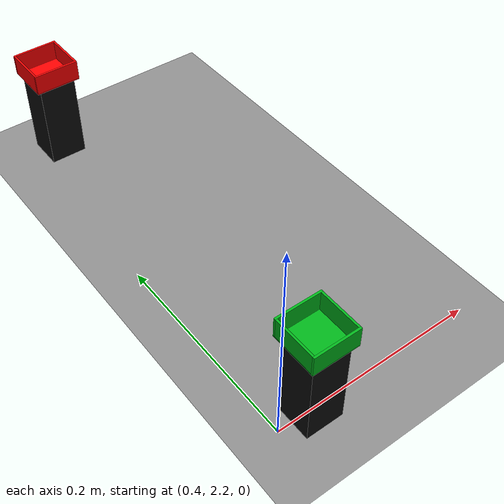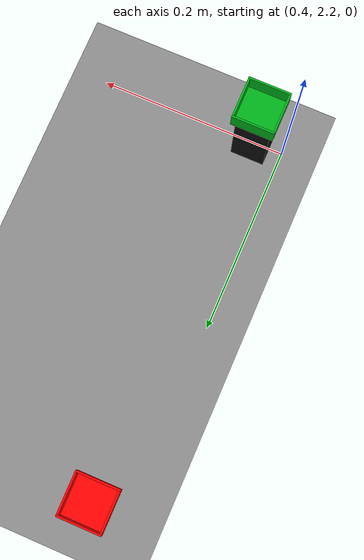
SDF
<sdf version="1.9">
 <world name="ros2_world">
  <model name="ground_plane">
   <static>true</static>
   <link name="link">
    <collision name="collision">
     <geometry><plane><normal>0 0 1</normal><size>30 30</size></plane></geometry>
    </collision>
    <visual name="visual">
     <geometry><plane><normal>0 0 1</normal><size>30 30</size></plane></geometry>
     <material><ambient>0.55 0.55 0.55 1</ambient><diffuse>0.55 0.55 0.55 1</diffuse></material>
    </visual>
   </link>
  </model>
  <model name="soporte_canasto_rojo">
   <static>true</static>
   <pose>0.432 2.6 0.04425 0 0 0</pose>
   <link name="link">
    <collision name="colision"><geometry><box><size>0.036 0.036 0.0885</size></box></geometry></collision>
    <visual name="visual">
     <geometry><box><size>0.036 0.036 0.0885</size></box></geometry>
     <material><ambient>0.05 0.05 0.05 1</ambient><diffuse>0.05 0.05 0.05 1</diffuse></material>
    </visual>
   </link>
  </model>
  <model name="canasto_rojo">
   <static>true</static>
   <pose>0.432 2.6 0.0885 0 0 0</pose>
   <link name="link">
    <collision name="c_fondo">
     <pose>0 0 0.0005 0 0 0</pose>
     <geometry><box><size>0.044 0.044 0.001</size></box></geometry>
     <surface><friction><ode><mu>1</mu><mu2>1</mu2></ode></friction></surface>
    </collision>
    <visual name="v_fondo">
     <pose>0 0 0.0005 0 0 0</pose>
     <geometry><box><size>0.044 0.044 0.001</size></box></geometry>
     <material><ambient>1 0 0 1</ambient><diffuse>1 0 0 1</diffuse></material>
    </visual>
    <collision name="c_pared_n">
     <pose>0 0.021 0.01 0 0 0</pose>
     <geometry><box><size>0.044 0.002 0.02</size></box></geometry>
     <surface><friction><ode><mu>1</mu><mu2>1</mu2></ode></friction></surface>
    </collision>
    <visual name="v_pared_n">
     <pose>0 0.021 0.01 0 0 0</pose>
     <geometry><box><size>0.044 0.002 0.02</size></box></geometry>
     <material><ambient>1 0 0 1</ambient><diffuse>1 0 0 1</diffuse></material>
    </visual>
    <collision name="c_pared_s">
     <pose>0 -0.021 0.01 0 0 0</pose>
     <geometry><box><size>0.044 0.002 0.02</size></box></geometry>
     <surface><friction><ode><mu>1</mu><mu2>1</mu2></ode></friction></surface>
    </collision>
    <visual name="v_pared_s">
     <pose>0 -0.021 0.01 0 0 0</pose>
     <geometry><box><size>0.044 0.002 0.02</size></box></geometry>
     <material><ambient>1 0 0 1</ambient><diffuse>1 0 0 1</diffuse></material>
    </visual>
    <collision name="c_pared_e">
     <pose>0.021 0 0.01 0 0 0</pose>
     <geometry><box><size>0.002 0.04 0.02</size></box></geometry>
     <surface><friction><ode><mu>1</mu><mu2>1</mu2></ode></friction></surface>
    </collision>
    <visual name="v_pared_e">
     <pose>0.021 0 0.01 0 0 0</pose>
     <geometry><box><size>0.002 0.04 0.02</size></box></geometry>
     <material><ambient>1 0 0 1</ambient><diffuse>1 0 0 1</diffuse></material>
    </visual>
    <collision name="c_pared_o">
     <pose>-0.021 0 0.01 0 0 0</pose>
     <geometry><box><size>0.002 0.04 0.02</size></box></geometry>
     <surface><friction><ode><mu>1</mu><mu2>1</mu2></ode></friction></surface>
    </collision>
    <visual name="v_pared_o">
     <pose>-0.021 0 0.01 0 0 0</pose>
     <geometry><box><size>0.002 0.04 0.02</size></box></geometry>
     <material><ambient>1 0 0 1</ambient><diffuse>1 0 0 1</diffuse></material>
    </visual>
   </link>
  </model>
  <model name="soporte_canasto_verde">
   <static>true</static>
   <pose>0.432 2.2 0.04425 0 0 0</pose>
   <link name="link">
    <collision name="colision"><geometry><box><size>0.036 0.036 0.0885</size></box></geometry></collision>
    <visual name="visual">
     <geometry><box><size>0.036 0.036 0.0885</size></box></geometry>
     <material><ambient>0.05 0.05 0.05 1</ambient><diffuse>0.05 0.05 0.05 1</diffuse></material>
    </visual>
   </link>
  </model>
  <model name="canasto_verde">
   <static>true</static>
   <pose>0.432 2.2 0.0885 0 0 0</pose>
   <link name="link">
    <collision name="c_fondo">
     <pose>0 0 0.0005 0 0 0</pose>
     <geometry><box><size>0.044 0.044 0.001</size></box></geometry>
     <surface><friction><ode><mu>1</mu><mu2>1</mu2></ode></friction></surface>
    </collision>
    <visual name="v_fondo">
     <pose>0 0 0.0005 0 0 0</pose>
     <geometry><box><size>0.044 0.044 0.001</size></box></geometry>
     <material><ambient>0 0.7 0.1 1</ambient><diffuse>0 0.7 0.1 1</diffuse></material>
    </visual>
    <collision name="c_pared_n">
     <pose>0 0.021 0.01 0 0 0</pose>
     <geometry><box><size>0.044 0.002 0.02</size></box></geometry>
     <surface><friction><ode><mu>1</mu><mu2>1</mu2></ode></friction></surface>
    </collision>
    <visual name="v_pared_n">
     <pose>0 0.021 0.01 0 0 0</pose>
     <geometry><box><size>0.044 0.002 0.02</size></box></geometry>
     <material><ambient>0 0.7 0.1 1</ambient><diffuse>0 0.7 0.1 1</diffuse></material>
    </visual>
    <collision name="c_pared_s">
     <pose>0 -0.021 0.01 0 0 0</pose>
     <geometry><box><size>0.044 0.002 0.02</size></box></geometry>
     <surface><friction><ode><mu>1</mu><mu2>1</mu2></ode></friction></surface>
    </collision>
    <visual name="v_pared_s">
     <pose>0 -0.021 0.01 0 0 0</pose>
     <geometry><box><size>0.044 0.002 0.02</size></box></geometry>
     <material><ambient>0 0.7 0.1 1</ambient><diffuse>0 0.7 0.1 1</diffuse></material>
    </visual>
    <collision name="c_pared_e">
     <pose>0.021 0 0.01 0 0 0</pose>
     <geometry><box><size>0.002 0.04 0.02</size></box></geometry>
     <surface><friction><ode><mu>1</mu><mu2>1</mu2></ode></friction></surface>
    </collision>
    <visual name="v_pared_e">
     <pose>0.021 0 0.01 0 0 0</pose>
     <geometry><box><size>0.002 0.04 0.02</size></box></geometry>
     <material><ambient>0 0.7 0.1 1</ambient><diffuse>0 0.7 0.1 1</diffuse></material>
    </visual>
    <collision name="c_pared_o">
     <pose>-0.021 0 0.01 0 0 0</pose>
     <geometry><box><size>0.002 0.04 0.02</size></box></geometry>
     <surface><friction><ode><mu>1</mu><mu2>1</mu2></ode></friction></surface>
    </collision>
    <visual name="v_pared_o">
     <pose>-0.021 0 0.01 0 0 0</pose>
     <geometry><box><size>0.002 0.04 0.02</size></box></geometry>
     <material><ambient>0 0.7 0.1 1</ambient><diffuse>0 0.7 0.1 1</diffuse></material>
    </visual>
   </link>
  </model>
 </world>
</sdf>
